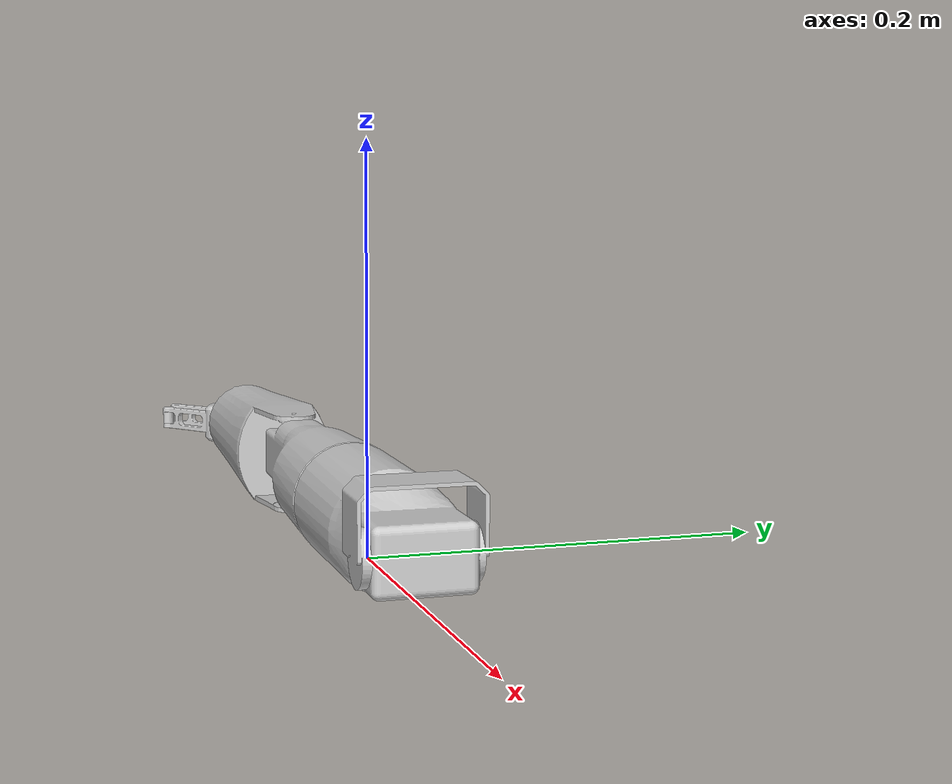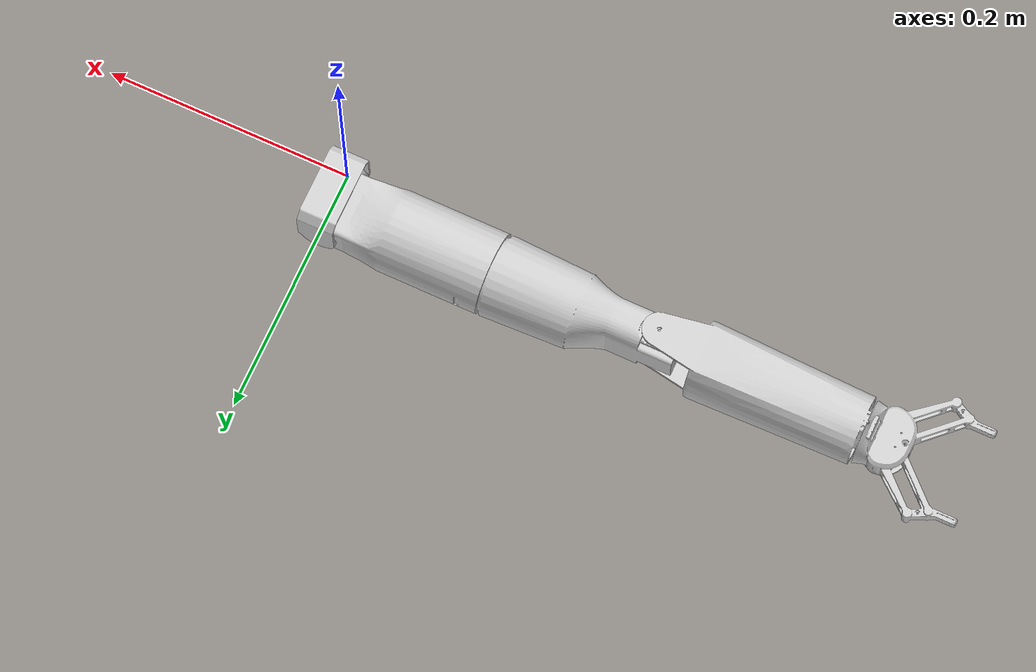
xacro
<?xml version="1.0"?>
  <robot xmlns:xacro="http://ros.org/wiki/xacro" name="v2_right_hand">

  <xacro:property name="scale" value="0.001" />
  <xacro:property name="raj_1_l" value="-3.14159" />
  <xacro:property name="raj_1_u" value="3.14159"  />

  <xacro:property name="raj_2_l" value="-3.14159" />
  <xacro:property name="raj_2_u" value="3.14159"  />

  <xacro:property name="raj_3_l" value="-3.14159" />
  <xacro:property name="raj_3_u" value="3.14159"  />

  <xacro:property name="raj_4_l" value="-3.14159" />
  <xacro:property name="raj_4_u" value="3.14159"  />

  <xacro:property name="damping_value" value="10000" />
  <xacro:property name="friction_value" value="10000" />

     <link name="ral_1">
       <visual>
          <geometry>
            <mesh filename="package://anya_v2/meshes/c5.dae" scale="${scale} ${scale} ${scale}"/>
          </geometry>
          <origin xyz="0.0 0.0 0.0" rpy="0 0 0"/>
       </visual>
       <collision>
         <geometry>
            <mesh filename="package://anya_v2/meshes/c5.stl" scale="${scale} ${scale} ${scale}"/>
         </geometry>
       </collision>
       <inertial>
         <mass value="0.016"/>
         <inertia ixx="100.0" ixy="0.0" ixz="0.0" iyy="100.0" iyz="0.0" izz="100.0"/>
       </inertial>
     </link>
     <link name="ral_2">
       <visual>
        <geometry>
          <mesh filename="package://anya_v2/meshes/c4.dae" scale="${scale} ${scale} ${scale}"/>
        </geometry>
        <origin xyz="0.0 -0.005 0.0" rpy="0.0 0.0 0.0"/>
       </visual>
       <collision>
         <geometry>
            <mesh filename="package://anya_v2/meshes/c4.stl" scale="${scale} ${scale} ${scale}"/>
         </geometry>
       </collision>
       <inertial>
         <mass value="0.237"/>
         <inertia ixx="100.0" ixy="0.0" ixz="0.0" iyy="100.0" iyz="0.0" izz="100.0"/>
       </inertial>
     </link>
     <link name="ral_3">
       <visual>
        <geometry>
          <mesh filename="package://anya_v2/meshes/c3.dae" scale="${scale} ${scale} ${scale}"/>
        </geometry>
        <origin xyz="-0 0 0.0" rpy="0 0 0.0"/>
       </visual>
       <collision>
         <geometry>
            <mesh filename="package://anya_v2/meshes/c3.stl" scale="${scale} ${scale} ${scale}"/>
         </geometry>
       </collision>
       <inertial>
         <mass value="0.131"/>
         <inertia ixx="0.0" ixy="100.0" ixz="0.0" iyy="100.0" iyz="0.0" izz="100.0"/>
       </inertial>
     </link>
     <link name="ral_4">
       <visual>
        <geometry>
          <mesh filename="package://anya_v2/meshes/c2.dae" scale="${scale} ${scale} ${scale}"/>
        </geometry>
        <origin xyz="0 0 0.0" rpy="0 0 0.0"/>
       </visual>
       <collision>
         <geometry>
            <mesh filename="package://anya_v2/meshes/c2.stl" scale="${scale} ${scale} ${scale}"/>
         </geometry>
       </collision>
       <inertial>
         <mass value="0.146"/>
         <inertia ixx="100.0" ixy="0.0" ixz="0.0" iyy="100.0" iyz="0.0" izz="100.0"/>
       </inertial>
     </link>

     <link name="rg_1">
       <visual>
        <geometry>
          <mesh filename="package://anya_v2/meshes/gripper.dae" scale="${scale} ${scale} ${scale}"/>
        </geometry>
        <origin xyz="-0 0 0.0" rpy="0 0 0.0"/>
       </visual>
       <collision>
         <geometry>
            <mesh filename="package://anya_v2/meshes/gripper.stl" scale="${scale} ${scale} ${scale}"/>
         </geometry>
       </collision>
       <inertial>
         <mass value="0.083"/>
         <inertia ixx="100.0" ixy="0.0" ixz="0.0" iyy="100.0" iyz="0.0" izz="100.0"/>
       </inertial>
     </link>

     <joint name="raj_1" type="revolute">
       <parent link="ral_1"/>
       <child link="ral_2"/>
       <axis xyz="0 1 0"/>
       <limit lower="${raj_1_l}" upper="${raj_1_u}" velocity="1.0" effort="60.0"/>
       <dynamics damping="${damping_value}" friction="${friction_value}"/>
       <origin xyz="0 -0.0 0" rpy="0 0 0"/>
     </joint>

     <joint name="raj_2" type="revolute">
       <parent link="ral_2"/>
       <child link="ral_3"/>
       <axis xyz="1 0 0"/>
       <limit lower="${raj_2_l}" upper="${raj_2_u}" velocity="1.0" effort="60.0"/>
       <dynamics damping="${damping_value}" friction="${friction_value}"/>
       <origin xyz="-0.130 0.025 0.0" rpy="0 0 0"/>
     </joint>

     <joint name="raj_3" type="revolute">
       <parent link="ral_3"/>
       <child link="ral_4"/>
       <axis xyz="0 0 1"/>
       <limit lower="${raj_3_l}" upper="${raj_3_u}" velocity="1.0" effort="60.0"/>
       <dynamics damping="${damping_value}" friction="${friction_value}"/>
       <origin xyz="-0.13950 -0.004 -0.02250" rpy="0 0 0"/>
     </joint>

     <joint name="raj_4" type="revolute">
       <parent link="ral_4"/>
       <child link="rg_1"/>
       <axis xyz="1 0 0"/>
       <limit lower="${raj_4_l}" upper="${raj_4_u}" velocity="1.0" effort="60.0"/>
       <dynamics damping="${damping_value}" friction="${friction_value}"/>
       <origin xyz="-0.17 0.0 0.02" rpy="0 0 0"/>
     </joint>

     <transmission name="Trans_1">
    <type>transmission_interface/SimpleTransmission</type>
    <joint name="raj_1">
      <hardwareInterface>hardware_interface/EffortJointInterface</hardwareInterface>
    </joint>
    <actuator name="motor1">
      <hardwareInterface>hardware_interface/EffortJointInterface</hardwareInterface>
      <mechanicalReduction>1</mechanicalReduction>
    </actuator>
  </transmission>

   <transmission name="Trans_2">
    <type>transmission_interface/SimpleTransmission</type>
    <joint name="raj_2">
      <hardwareInterface>hardware_interface/EffortJointInterface</hardwareInterface>
    </joint>
    <actuator name="motor2">
      <hardwareInterface>hardware_interface/EffortJointInterface</hardwareInterface>
      <mechanicalReduction>1</mechanicalReduction>
    </actuator>
  </transmission>

   <transmission name="Trans_3">
    <type>transmission_interface/SimpleTransmission</type>
    <joint name="raj_3">
      <hardwareInterface>hardware_interface/EffortJointInterface</hardwareInterface>
    </joint>
    <actuator name="motor3">
      <hardwareInterface>hardware_interface/EffortJointInterface</hardwareInterface>
      <mechanicalReduction>1</mechanicalReduction>
    </actuator>
  </transmission>

   <transmission name="Trans_4">
    <type>transmission_interface/SimpleTransmission</type>
    <joint name="raj_4">
      <hardwareInterface>hardware_interface/EffortJointInterface</hardwareInterface>
    </joint>
    <actuator name="motor4">
      <hardwareInterface>hardware_interface/EffortJointInterface</hardwareInterface>
      <mechanicalReduction>1</mechanicalReduction>
    </actuator>
  </transmission>

  </robot>
